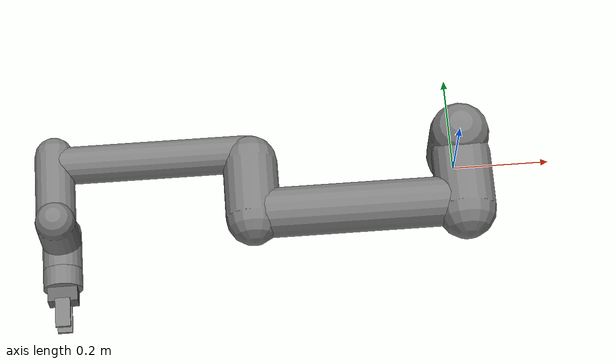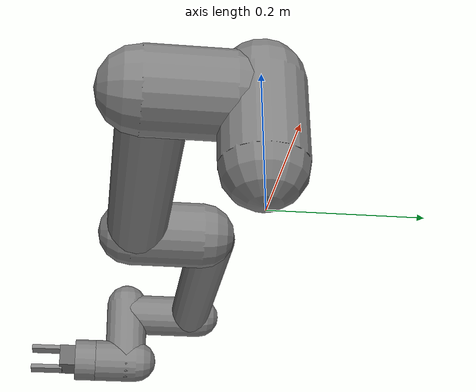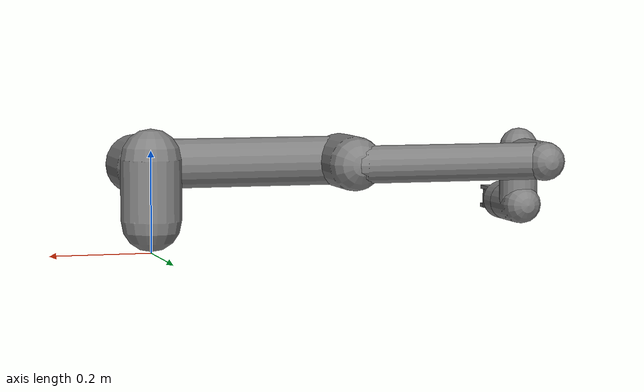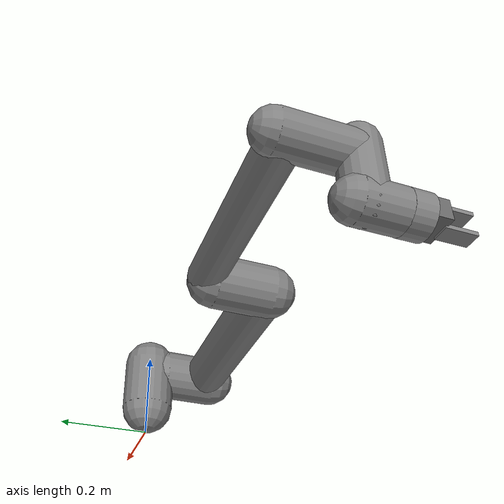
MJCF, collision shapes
<mujoco model="ur5e with gripper">
  <compiler angle="radian" meshdir="assets" autolimits="true"/>

  <option integrator="implicitfast"/>

  <default>
    <default class="ur5e">
      <material specular="0.5" shininess="0.25"/>
      <joint axis="0 1 0" range="-6.28319 6.28319" armature="0.1"/>
      <general gaintype="fixed" biastype="affine" ctrlrange="-6.2831 6.2831" gainprm="2000" biasprm="0 -2000 -400"
        forcerange="-150 150"/>
      <default class="size3">
        <default class="size3_limited">
          <joint range="-3.1415 3.1415"/>
          <general ctrlrange="-3.1415 3.1415"/>
        </default>
      </default>
      <default class="size1">
        <general gainprm="500" biasprm="0 -500 -100" forcerange="-28 28"/>
      </default>
      <default class="visual">
        <geom type="mesh" contype="0" conaffinity="0" group="2"/>
      </default>
      <default class="collision">
        <geom type="capsule" group="3"/>
        <default class="eef_collision">
          <geom type="cylinder"/>
        </default>
      </default>
      <site size="0.001" rgba="0.5 0.5 0.5 0.3" group="4"/>
    </default>
  </default>

  <asset>
    <material class="ur5e" name="black" rgba="0.033 0.033 0.033 1"/>
    <material class="ur5e" name="jointgray" rgba="0.278 0.278 0.278 1"/>
    <material class="ur5e" name="linkgray" rgba="0.82 0.82 0.82 1"/>
    <material class="ur5e" name="urblue" rgba="0.49 0.678 0.8 1"/>

    <mesh file="base_0.obj"/>
    <mesh file="base_1.obj"/>
    <mesh file="shoulder_0.obj"/>
    <mesh file="shoulder_1.obj"/>
    <mesh file="shoulder_2.obj"/>
    <mesh file="upperarm_0.obj"/>
    <mesh file="upperarm_1.obj"/>
    <mesh file="upperarm_2.obj"/>
    <mesh file="upperarm_3.obj"/>
    <mesh file="forearm_0.obj"/>
    <mesh file="forearm_1.obj"/>
    <mesh file="forearm_2.obj"/>
    <mesh file="forearm_3.obj"/>
    <mesh file="wrist1_0.obj"/>
    <mesh file="wrist1_1.obj"/>
    <mesh file="wrist1_2.obj"/>
    <mesh file="wrist2_0.obj"/>
    <mesh file="wrist2_1.obj"/>
    <mesh file="wrist2_2.obj"/>
    <mesh file="wrist3.obj"/>
  </asset>

  <worldbody>
    <light name="spotlight" mode="targetbodycom" target="wrist_2_link" pos="0 -1 2"/>
    <body name="base" quat="0 0 0 -1" childclass="ur5e">
      <inertial mass="4.0" pos="0 0 0" diaginertia="0.00443333156 0.00443333156 0.0072"/>
      <geom mesh="base_0" material="black" class="visual"/>
      <geom mesh="base_1" material="jointgray" class="visual"/>
      <body name="shoulder_link" pos="0 0 0.163">
        <inertial mass="3.7" pos="0 0 0" diaginertia="0.0102675 0.0102675 0.00666"/>
        <joint name="shoulder_pan_joint" class="size3" axis="0 0 1"/>
        <geom mesh="shoulder_0" material="urblue" class="visual"/>
        <geom mesh="shoulder_1" material="black" class="visual"/>
        <geom mesh="shoulder_2" material="jointgray" class="visual"/>
        <geom class="collision" size="0.06 0.06" pos="0 0 -0.04"/>
        <body name="upper_arm_link" pos="0 0.138 0" quat="1 0 1 0">
          <inertial mass="8.393" pos="0 0 0.2125" diaginertia="0.133886 0.133886 0.0151074"/>
          <joint name="shoulder_lift_joint" class="size3"/>
          <geom mesh="upperarm_0" material="linkgray" class="visual"/>
          <geom mesh="upperarm_1" material="black" class="visual"/>
          <geom mesh="upperarm_2" material="jointgray" class="visual"/>
          <geom mesh="upperarm_3" material="urblue" class="visual"/>
          <geom class="collision" pos="0 -0.04 0" quat="1 1 0 0" size="0.06 0.06"/>
          <geom class="collision" size="0.05 0.2" pos="0 0 0.2"/>
          <body name="forearm_link" pos="0 -0.131 0.425">
            <inertial mass="2.275" pos="0 0 0.196" diaginertia="0.0311796 0.0311796 0.004095"/>
            <joint name="elbow_joint" class="size3_limited"/>
            <geom mesh="forearm_0" material="urblue" class="visual"/>
            <geom mesh="forearm_1" material="linkgray" class="visual"/>
            <geom mesh="forearm_2" material="black" class="visual"/>
            <geom mesh="forearm_3" material="jointgray" class="visual"/>
            <geom class="collision" pos="0 0.08 0" quat="1 1 0 0" size="0.055 0.06"/>
            <geom class="collision" size="0.038 0.19" pos="0 0 0.2"/>
            <body name="wrist_1_link" pos="0 0 0.392" quat="1 0 1 0">
              <inertial mass="1.219" pos="0 0.127 0" diaginertia="0.0025599 0.0025599 0.0021942"/>
              <joint name="wrist_1_joint" class="size1"/>
              <geom mesh="wrist1_0" material="black" class="visual"/>
              <geom mesh="wrist1_1" material="urblue" class="visual"/>
              <geom mesh="wrist1_2" material="jointgray" class="visual"/>
              <geom class="collision" pos="0 0.05 0" quat="1 1 0 0" size="0.04 0.07"/>
              <body name="wrist_2_link" pos="0 0.127 0">
                <inertial mass="1.219" pos="0 0 0.1" diaginertia="0.0025599 0.0025599 0.0021942"/>
                <joint name="wrist_2_joint" axis="0 0 1" class="size1"/>
                <geom mesh="wrist2_0" material="black" class="visual"/>
                <geom mesh="wrist2_1" material="urblue" class="visual"/>
                <geom mesh="wrist2_2" material="jointgray" class="visual"/>
                <geom class="collision" size="0.04 0.06" pos="0 0 0.04"/>
                <geom class="collision" pos="0 0.02 0.1" quat="1 1 0 0" size="0.04 0.04"/>
                <body name="wrist_3_link" pos="0 0 0.1">
                  <inertial mass="0.1889" pos="0 0.0771683 0" quat="1 0 0 1"
                    diaginertia="0.000132134 9.90863e-05 9.90863e-05"/>
                  <joint name="wrist_3_joint" class="size1"/>
                  <geom material="linkgray" mesh="wrist3" class="visual"/>
                  <geom class="eef_collision" pos="0 0.08 0" quat="1 1 0 0" size="0.04 0.02"/>
                  <site name="attachment_site" pos="0 0.1 0" quat="-1 1 0 0"/>

                  <!-- ═══ PARALLEL-JAW GRIPPER ═══ -->
                  <body name="gripper_base" pos="0 0.1 0" quat="-1 1 0 0">
                    <inertial mass="0.2" pos="0 0 0.03" diaginertia="0.0001 0.0001 0.0001"/>
                    <geom type="box" size="0.03 0.02 0.015" pos="0 0 0.015"
                          rgba="0.4 0.4 0.4 1" mass="0.1"/>

                    <!-- Finger 1 (left) -->
                    <body name="gripper_finger1" pos="0 0.02 0.03">
                      <inertial mass="0.05" pos="0 0 0.025" diaginertia="1e-5 1e-5 1e-5"/>
                      <joint name="gripper_finger1_joint" type="slide"
                             axis="0 1 0" range="0 0.04" damping="10"/>
                      <geom name="finger1_geom" type="box" size="0.015 0.004 0.03"
                            pos="0 0 0.025" rgba="0.5 0.5 0.5 1"
                            condim="4" friction="2.0 0.1 0.01"/>
                      <site name="finger1_tip" pos="0 0 0.055" size="0.003"/>
                    </body>

                    <!-- Finger 2 (right) — mirrors finger 1 via equality -->
                    <body name="gripper_finger2" pos="0 -0.02 0.03">
                      <inertial mass="0.05" pos="0 0 0.025" diaginertia="1e-5 1e-5 1e-5"/>
                      <joint name="gripper_finger2_joint" type="slide"
                             axis="0 -1 0" range="0 0.04" damping="10"/>
                      <geom name="finger2_geom" type="box" size="0.015 0.004 0.03"
                            pos="0 0 0.025" rgba="0.5 0.5 0.5 1"
                            condim="4" friction="2.0 0.1 0.01"/>
                      <site name="finger2_tip" pos="0 0 0.055" size="0.003"/>
                    </body>

                    <!-- TCP (tool center point) between fingers -->
                    <site name="tcp_site" pos="0 0 0.055" size="0.005" rgba="1 0 0 0.5"/>
                  </body>

                </body>
              </body>
            </body>
          </body>
        </body>
      </body>
    </body>
  </worldbody>

  <actuator>
    <general class="size3" name="shoulder_pan" joint="shoulder_pan_joint"/>
    <general class="size3" name="shoulder_lift" joint="shoulder_lift_joint"/>
    <general class="size3_limited" name="elbow" joint="elbow_joint"/>
    <general class="size1" name="wrist_1" joint="wrist_1_joint"/>
    <general class="size1" name="wrist_2" joint="wrist_2_joint"/>
    <general class="size1" name="wrist_3" joint="wrist_3_joint"/>
  </actuator>

  <keyframe>
    <key name="home" qpos="-1.5708 -1.5708 1.5708 -1.5708 -1.5708 0 0.02 0.02"
         ctrl="-1.5708 -1.5708 1.5708 -1.5708 -1.5708 0"/>
  </keyframe>
</mujoco>
